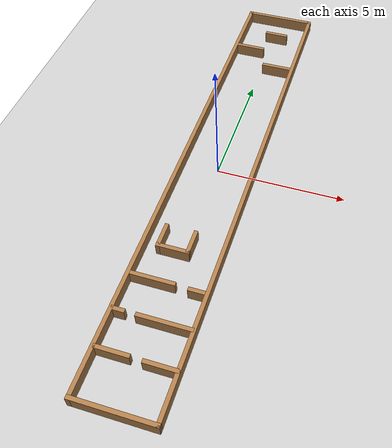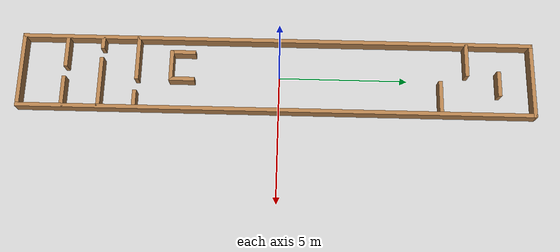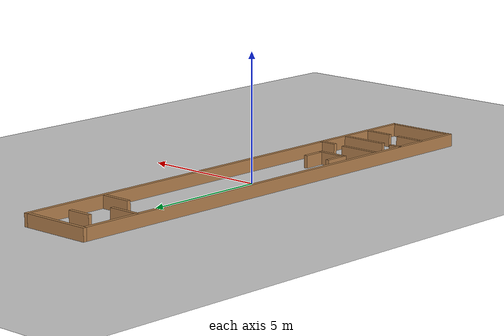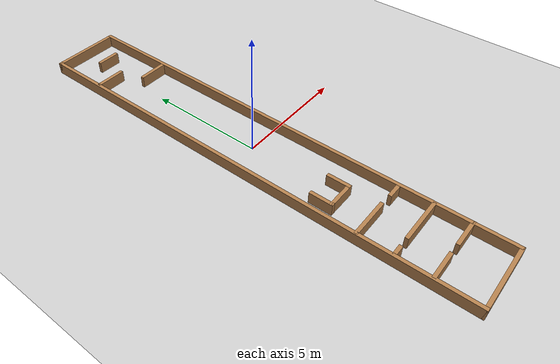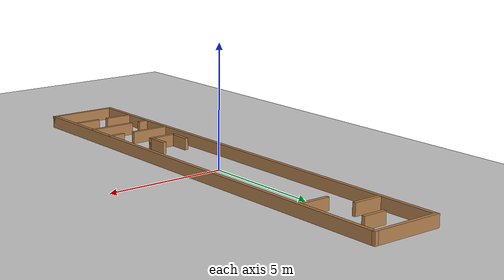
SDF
<sdf version="1.7">
 <world name="obs_corridor_world">
  <light name="sun" type="directional">
   <pose>0 0 10 0 -0 0</pose>
   <diffuse>0.8 0.8 0.8 1</diffuse>
   <specular>0.2 0.2 0.2 1</specular>
   <attenuation>
    <range>1000</range>
    <constant>0.9</constant>
    <linear>0.01</linear>
    <quadratic>0.001</quadratic>
   </attenuation>
   <direction>-0.5 0.1 -0.9</direction>
   <spot><inner_angle>0</inner_angle><outer_angle>0</outer_angle><falloff>0</falloff></spot>
  </light>
  <model name="ground_plane">
   <static>1</static>
   <link name="link">
    <collision name="collision">
     <geometry><plane><normal>0 0 1</normal><size>100 100</size></plane></geometry>
     <surface>
      <contact><collide_bitmask>65535</collide_bitmask></contact>
      <friction><ode><mu>100</mu><mu2>50</mu2></ode></friction>
     </surface>
    </collision>
    <visual name="visual">
     <cast_shadows>0</cast_shadows>
     <geometry><plane><normal>0 0 1</normal><size>100 100</size></plane></geometry>
     <material>
      <script><uri>file://media/materials/scripts/gazebo.material</uri><name>Gazebo/Grey</name></script>
     </material>
    </visual>
   </link>
  </model>
  <gravity>0 0 -9.8</gravity>
  <magnetic_field>6e-06 2.3e-05 -4.2e-05</magnetic_field>
  <atmosphere type="adiabatic"/>
  <physics type="ode">
   <max_step_size>0.001</max_step_size>
   <real_time_factor>1</real_time_factor>
   <real_time_update_rate>1000</real_time_update_rate>
  </physics>
  <scene><ambient>0.4 0.4 0.4 1</ambient><background>0.7 0.7 0.7 1</background><shadows>1</shadows></scene>
  <spherical_coordinates>
   <surface_model>EARTH_WGS84</surface_model>
   <latitude_deg>0</latitude_deg>
   <longitude_deg>0</longitude_deg>
   <elevation>0</elevation>
   <heading_deg>0</heading_deg>
  </spherical_coordinates>
  <model name="corridor_world">
   <pose>0.684501 -0.115106 0 0 0 -1.56858</pose>
   <link name="Wall_0">
    <collision name="Wall_0_Collision">
     <geometry><box><size>20 0.15 0.5</size></box></geometry>
     <pose>0 0 0.25 0 -0 0</pose>
    </collision>
    <visual name="Wall_0_Visual">
     <pose>0 0 0.25 0 -0 0</pose>
     <geometry><box><size>20 0.15 0.5</size></box></geometry>
     <material>
      <script><uri>file://media/materials/scripts/gazebo.material</uri><name>Gazebo/Wood</name></script>
      <ambient>1 1 1 1</ambient>
     </material>
     <meta><layer>0</layer></meta>
    </visual>
    <pose>0 0.7475 0 0 -0 0</pose>
   </link>
   <link name="Wall_10">
    <collision name="Wall_10_Collision">
     <geometry><box><size>1.3 0.15 0.5</size></box></geometry>
     <pose>0 0 0.25 0 -0 0</pose>
    </collision>
    <visual name="Wall_10_Visual">
     <pose>0 0 0.25 0 -0 0</pose>
     <geometry><box><size>1.3 0.15 0.5</size></box></geometry>
     <material>
      <script><uri>file://media/materials/scripts/gazebo.material</uri><name>Gazebo/Wood</name></script>
      <ambient>1 1 1 1</ambient>
     </material>
     <meta><layer>0</layer></meta>
    </visual>
    <pose>-7.398 -1.4565 0 0 -0 1.5708</pose>
   </link>
   <link name="Wall_12">
    <collision name="Wall_12_Collision">
     <geometry><box><size>1.3 0.15 0.5</size></box></geometry>
     <pose>0 0 0.25 0 -0 0</pose>
    </collision>
    <visual name="Wall_12_Visual">
     <pose>0 0 0.25 0 -0 0</pose>
     <geometry><box><size>1.3 0.15 0.5</size></box></geometry>
     <material>
      <script><uri>file://media/materials/scripts/gazebo.material</uri><name>Gazebo/Wood</name></script>
      <ambient>1 1 1 1</ambient>
     </material>
     <meta><layer>0</layer></meta>
    </visual>
    <pose>-6.353 0.0775 0 0 -0 -1.5708</pose>
   </link>
   <link name="Wall_15">
    <collision name="Wall_15_Collision">
     <geometry><box><size>1.25 0.15 0.5</size></box></geometry>
     <pose>0 0 0.25 0 -0 0</pose>
    </collision>
    <visual name="Wall_15_Visual">
     <pose>0 0 0.25 0 -0 0</pose>
     <geometry><box><size>1.25 0.15 0.5</size></box></geometry>
     <material>
      <script><uri>file://media/materials/scripts/gazebo.material</uri><name>Gazebo/Wood</name></script>
      <ambient>1 1 1 1</ambient>
     </material>
     <meta><layer>0</layer></meta>
    </visual>
    <pose>8.233 0.1865 0 0 -0 -1.5708</pose>
   </link>
   <link name="Wall_17">
    <collision name="Wall_17_Collision">
     <geometry><box><size>1.25 0.15 0.5</size></box></geometry>
     <pose>0 0 0.25 0 -0 0</pose>
    </collision>
    <visual name="Wall_17_Visual">
     <pose>0 0 0.25 0 -0 0</pose>
     <geometry><box><size>1.25 0.15 0.5</size></box></geometry>
     <material>
      <script><uri>file://media/materials/scripts/gazebo.material</uri><name>Gazebo/Wood</name></script>
      <ambient>1 1 1 1</ambient>
     </material>
     <meta><layer>0</layer></meta>
    </visual>
    <pose>8.212 -1.4695 0 0 -0 1.5708</pose>
   </link>
   <link name="Wall_19">
    <collision name="Wall_19_Collision">
     <geometry><box><size>2 0.15 0.5</size></box></geometry>
     <pose>0 0 0.25 0 -0 0</pose>
    </collision>
    <visual name="Wall_19_Visual">
     <pose>0 0 0.25 0 -0 0</pose>
     <geometry><box><size>2 0.15 0.5</size></box></geometry>
     <material>
      <script><uri>file://media/materials/scripts/gazebo.material</uri><name>Gazebo/Wood</name></script>
      <ambient>1 1 1 1</ambient>
     </material>
     <meta><layer>0</layer></meta>
    </visual>
    <pose>6.825 -0.2495 0 0 -0 -1.5708</pose>
   </link>
   <link name="Wall_2">
    <collision name="Wall_2_Collision">
     <geometry><box><size>3 0.15 0.5</size></box></geometry>
     <pose>0 0 0.25 0 -0 0</pose>
    </collision>
    <visual name="Wall_2_Visual">
     <pose>0 0 0.25 0 -0 0</pose>
     <geometry><box><size>3 0.15 0.5</size></box></geometry>
     <material>
      <script><uri>file://media/materials/scripts/gazebo.material</uri><name>Gazebo/Wood</name></script>
      <ambient>1 1 1 1</ambient>
     </material>
     <meta><layer>0</layer></meta>
    </visual>
    <pose>-9.925 -0.6775 0 0 -0 -1.5708</pose>
   </link>
   <link name="Wall_21">
    <collision name="Wall_21_Collision">
     <geometry><box><size>0.5 0.15 0.5</size></box></geometry>
     <pose>0 0 0.25 0 -0 0</pose>
    </collision>
    <visual name="Wall_21_Visual">
     <pose>0 0 0.25 0 -0 0</pose>
     <geometry><box><size>0.5 0.15 0.5</size></box></geometry>
     <material>
      <script><uri>file://media/materials/scripts/gazebo.material</uri><name>Gazebo/Wood</name></script>
      <ambient>1 1 1 1</ambient>
     </material>
     <meta><layer>0</layer></meta>
    </visual>
    <pose>6.825 -1.8645 0 0 -0 1.5708</pose>
   </link>
   <link name="Wall_23">
    <collision name="Wall_23_Collision">
     <geometry><box><size>0.75 0.15 0.5</size></box></geometry>
     <pose>0 0 0.25 0 -0 0</pose>
    </collision>
    <visual name="Wall_23_Visual">
     <pose>0 0 0.25 0 -0 0</pose>
     <geometry><box><size>0.75 0.15 0.5</size></box></geometry>
     <material>
      <script><uri>file://media/materials/scripts/gazebo.material</uri><name>Gazebo/Wood</name></script>
      <ambient>1 1 1 1</ambient>
     </material>
     <meta><layer>0</layer></meta>
    </visual>
    <pose>5.457 0.4365 0 0 -0 -1.5708</pose>
   </link>
   <link name="Wall_25">
    <collision name="Wall_25_Collision">
     <geometry><box><size>1.75 0.15 0.5</size></box></geometry>
     <pose>0 0 0.25 0 -0 0</pose>
    </collision>
    <visual name="Wall_25_Visual">
     <pose>0 0 0.25 0 -0 0</pose>
     <geometry><box><size>1.75 0.15 0.5</size></box></geometry>
     <material>
      <script><uri>file://media/materials/scripts/gazebo.material</uri><name>Gazebo/Wood</name></script>
      <ambient>1 1 1 1</ambient>
     </material>
     <meta><layer>0</layer></meta>
    </visual>
    <pose>5.417 -1.2595 0 0 -0 1.5708</pose>
   </link>
   <link name="Wall_27">
    <collision name="Wall_27_Collision">
     <geometry><box><size>1 0.15 0.5</size></box></geometry>
     <pose>0 0 0.25 0 -0 0</pose>
    </collision>
    <visual name="Wall_27_Visual">
     <pose>0 0 0.25 0 -0 0</pose>
     <geometry><box><size>1 0.15 0.5</size></box></geometry>
     <material>
      <script><uri>file://media/materials/scripts/gazebo.material</uri><name>Gazebo/Wood</name></script>
      <ambient>1 1 1 1</ambient>
     </material>
     <meta><layer>0</layer></meta>
    </visual>
    <pose>3.669 -0.4305 0 0 -0 0</pose>
   </link>
   <link name="Wall_28">
    <collision name="Wall_28_Collision">
     <geometry><box><size>1.25 0.15 0.5</size></box></geometry>
     <pose>0 0 0.25 0 -0 0</pose>
    </collision>
    <visual name="Wall_28_Visual">
     <pose>0 0 0.25 0 -0 0</pose>
     <geometry><box><size>1.25 0.15 0.5</size></box></geometry>
     <material>
      <script><uri>file://media/materials/scripts/gazebo.material</uri><name>Gazebo/Wood</name></script>
      <ambient>1 1 1 1</ambient>
     </material>
     <meta><layer>0</layer></meta>
    </visual>
    <pose>4.094 -0.9805 0 0 -0 -1.5708</pose>
   </link>
   <link name="Wall_29">
    <collision name="Wall_29_Collision">
     <geometry><box><size>1 0.15 0.5</size></box></geometry>
     <pose>0 0 0.25 0 -0 0</pose>
    </collision>
    <visual name="Wall_29_Visual">
     <pose>0 0 0.25 0 -0 0</pose>
     <geometry><box><size>1 0.15 0.5</size></box></geometry>
     <material>
      <script><uri>file://media/materials/scripts/gazebo.material</uri><name>Gazebo/Wood</name></script>
      <ambient>1 1 1 1</ambient>
     </material>
     <meta><layer>0</layer></meta>
    </visual>
    <pose>3.669 -1.5305 0 0 -0 3.14159</pose>
   </link>
   <link name="Wall_3">
    <collision name="Wall_3_Collision">
     <geometry><box><size>20 0.15 0.5</size></box></geometry>
     <pose>0 0 0.25 0 -0 0</pose>
    </collision>
    <visual name="Wall_3_Visual">
     <pose>0 0 0.25 0 -0 0</pose>
     <geometry><box><size>20 0.15 0.5</size></box></geometry>
     <material>
      <script><uri>file://media/materials/scripts/gazebo.material</uri><name>Gazebo/Wood</name></script>
      <ambient>1 1 1 1</ambient>
     </material>
     <meta><layer>0</layer></meta>
    </visual>
    <pose>0 -2.1025 0 0 -0 0</pose>
   </link>
   <link name="Wall_5">
    <collision name="Wall_5_Collision">
     <geometry><box><size>3 0.15 0.5</size></box></geometry>
     <pose>0 0 0.25 0 -0 0</pose>
    </collision>
    <visual name="Wall_5_Visual">
     <pose>0 0 0.25 0 -0 0</pose>
     <geometry><box><size>3 0.15 0.5</size></box></geometry>
     <material>
      <script><uri>file://media/materials/scripts/gazebo.material</uri><name>Gazebo/Wood</name></script>
      <ambient>1 1 1 1</ambient>
     </material>
     <meta><layer>0</layer></meta>
    </visual>
    <pose>9.925 -0.6775 0 0 -0 -1.5708</pose>
   </link>
   <link name="Wall_7">
    <collision name="Wall_7_Collision">
     <geometry><box><size>1 0.15 0.5</size></box></geometry>
     <pose>0 0 0.25 0 -0 0</pose>
    </collision>
    <visual name="Wall_7_Visual">
     <pose>0 0 0.25 0 -0 0</pose>
     <geometry><box><size>1 0.15 0.5</size></box></geometry>
     <material>
      <script><uri>file://media/materials/scripts/gazebo.material</uri><name>Gazebo/Wood</name></script>
      <ambient>1 1 1 1</ambient>
     </material>
     <meta><layer>0</layer></meta>
    </visual>
    <pose>-8.624 -0.5175 0 0 -0 -1.5708</pose>
   </link>
   <static>1</static>
  </model>
 </world>
</sdf>
